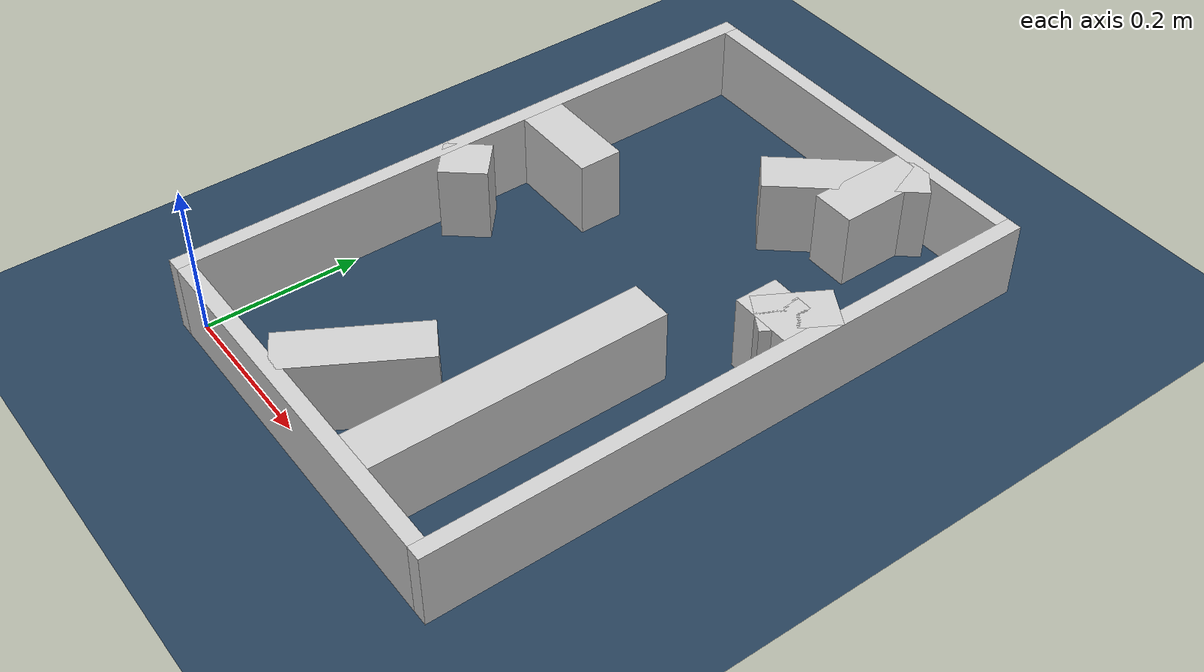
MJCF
<?xml version="1.0" ?>
<mujoco model="generated_real_template">
  <compiler angle="degree"/>
  <option timestep="0.002" integrator="implicitfast" iterations="100" cone="elliptic"/>
  <default>
    <geom density="1"/>
  </default>
  <asset>
    <texture builtin="gradient" height="3072" rgb1="0.3 0.5 0.7" rgb2="0 0 0" type="skybox" width="512"/>
    <texture builtin="checker" height="300" mark="edge" markrgb="0.8 0.8 0.8" name="groundplane" rgb1="0.2 0.3 0.4" rgb2="0.1 0.2 0.3" type="2d" width="300"/>
    <material name="groundplane" reflectance="0.2" texrepeat="5 5" texture="groundplane" texuniform="true"/>
  </asset>
  <worldbody>
    <light dir="0 0 -1" directional="true" pos="0 0 1.5"/>
    <geom name="floor" type="plane" condim="4" friction="0.5 0.005 0.001" material="groundplane" size="0 0 0.05"/>
    <body name="walls">
      <geom name="wall_boundary_left" type="box" condim="4" friction="1.0 0.005 0.0001" rgba="0.8 0.8 0.8 1" pos="-0.010000 0.387500 0.050000" euler="0 0 0.000000" size="0.010000 0.407500 0.050000"/>
      <geom name="wall_boundary_right" type="box" condim="4" friction="1.0 0.005 0.0001" rgba="0.8 0.8 0.8 1" pos="0.500000 0.387500 0.050000" euler="0 0 0.000000" size="0.010000 0.407500 0.050000"/>
      <geom name="wall_boundary_bottom" type="box" condim="4" friction="1.0 0.005 0.0001" rgba="0.8 0.8 0.8 1" pos="0.245000 -0.010000 0.050000" euler="0 0 0.000000" size="0.245000 0.010000 0.050000"/>
      <geom name="wall_boundary_top" type="box" condim="4" friction="1.0 0.005 0.0001" rgba="0.8 0.8 0.8 1" pos="0.245000 0.785000 0.050000" euler="0 0 0.000000" size="0.245000 0.010000 0.050000"/>
      <geom name="wall_inner_1_1" type="box" condim="4" friction="1.0 0.005 0.0001" rgba="0.8 0.8 0.8 1" pos="0.317106 0.698685 0.050000" euler="0 0 -130.348834" size="0.100135 0.028500 0.050000"/>
      <geom name="wall_inner_1_2" type="box" condim="4" friction="1.0 0.005 0.0001" rgba="0.8 0.8 0.8 1" pos="0.021499 0.350719 0.050000" euler="0 0 -130.348834" size="0.030547 0.028500 0.050000"/>
      <geom name="wall_inner_2_1" type="box" condim="4" friction="1.0 0.005 0.0001" rgba="0.8 0.8 0.8 1" pos="0.461772 0.494496 0.050000" euler="0 0 -119.993968" size="0.047095 0.028500 0.050000"/>
      <geom name="wall_inner_2_2" type="box" condim="4" friction="1.0 0.005 0.0001" rgba="0.8 0.8 0.8 1" pos="0.221477 0.078191 0.050000" euler="0 0 -119.993968" size="0.090282 0.028500 0.050000"/>
      <geom name="wall_inner_3_1" type="box" condim="4" friction="1.0 0.005 0.0001" rgba="0.8 0.8 0.8 1" pos="0.060814 0.480492 0.050000" euler="0 0 0.000000" size="0.060814 0.028500 0.050000"/>
      <geom name="wall_inner_3_2" type="box" condim="4" friction="1.0 0.005 0.0001" rgba="0.8 0.8 0.8 1" pos="0.450086 0.480492 0.050000" euler="0 0 0.000000" size="0.039914 0.028500 0.050000"/>
      <geom name="wall_inner_4_1" type="box" condim="4" friction="1.0 0.005 0.0001" rgba="0.8 0.8 0.8 1" pos="0.354915 0.188870 0.050000" euler="0 0 90.000000" size="0.188870 0.028500 0.050000"/>
      <geom name="wall_inner_4_2" type="box" condim="4" friction="1.0 0.005 0.0001" rgba="0.8 0.8 0.8 1" pos="0.354915 0.709796 0.050000" euler="0 0 90.000000" size="0.065204 0.028500 0.050000"/>
    </body>
  </worldbody>
</mujoco>
